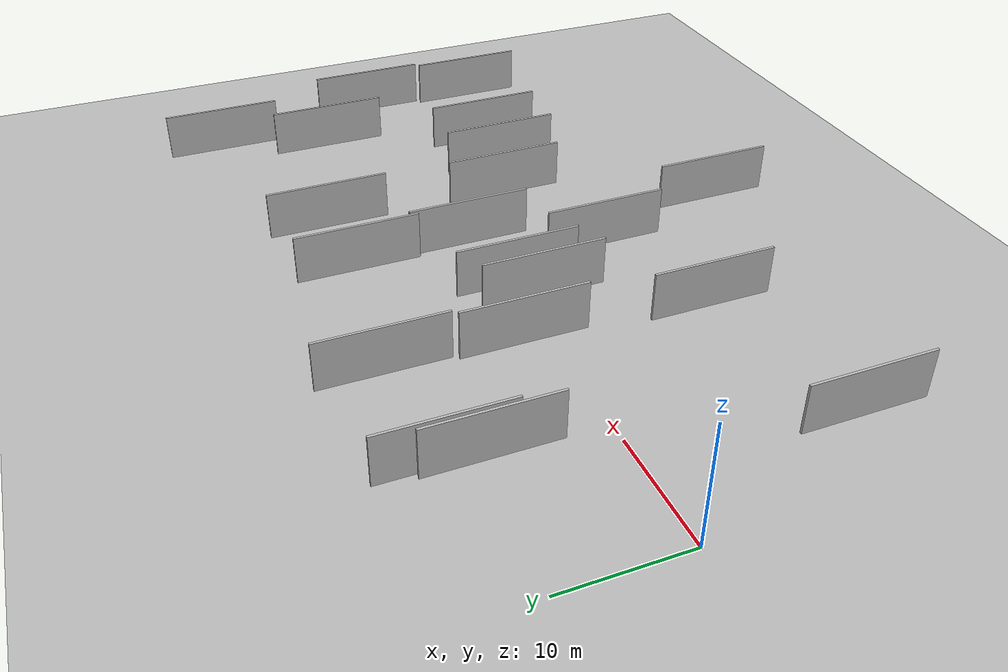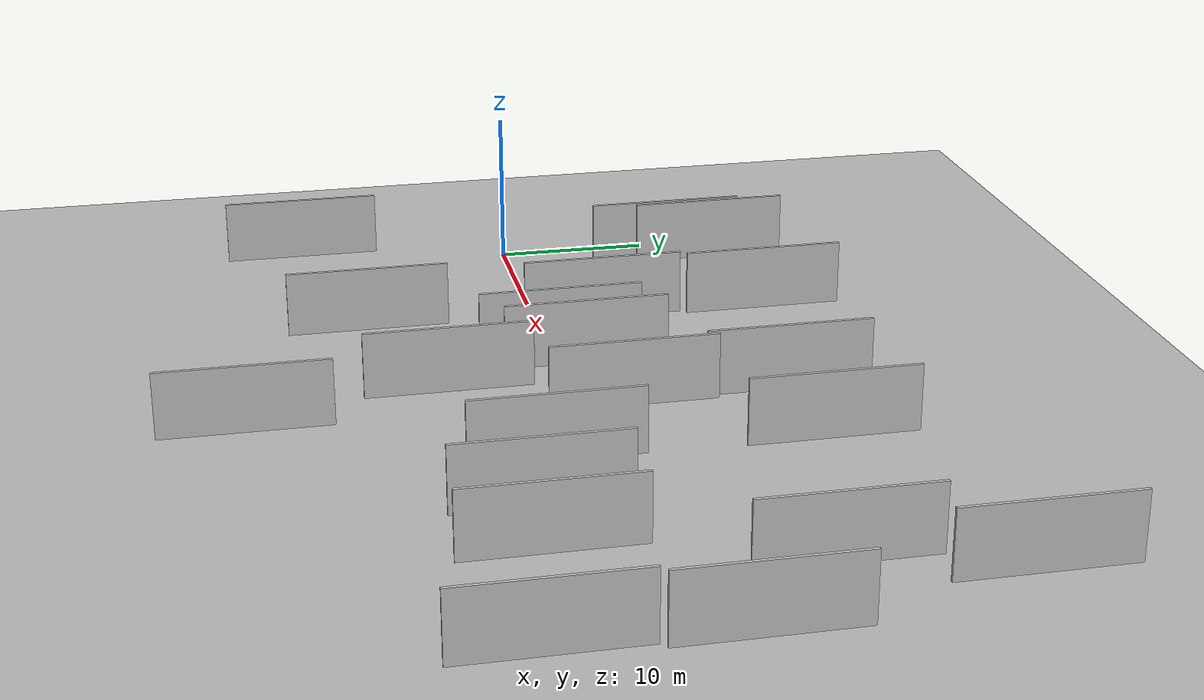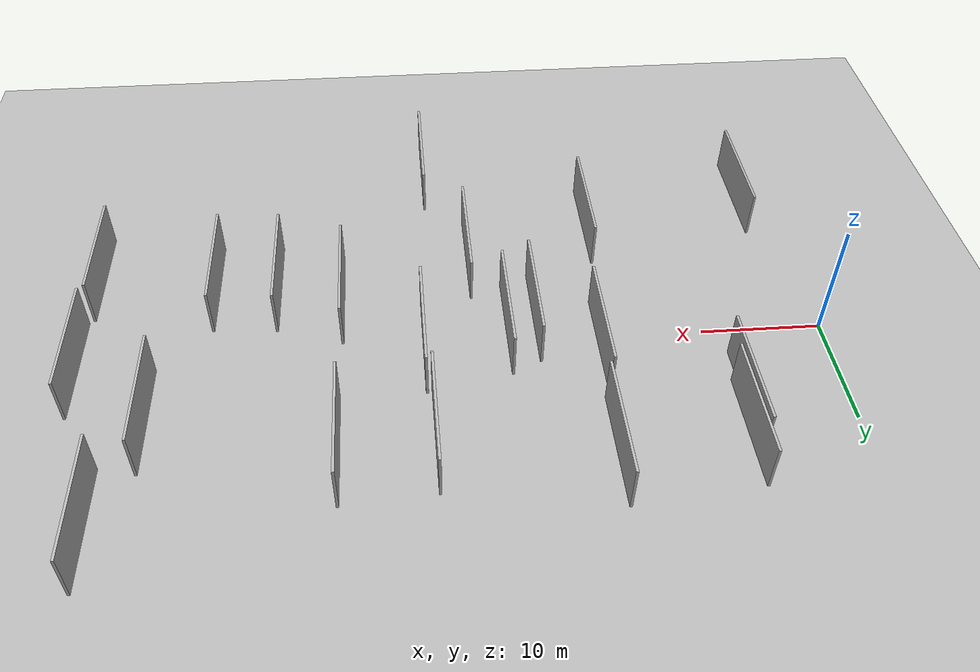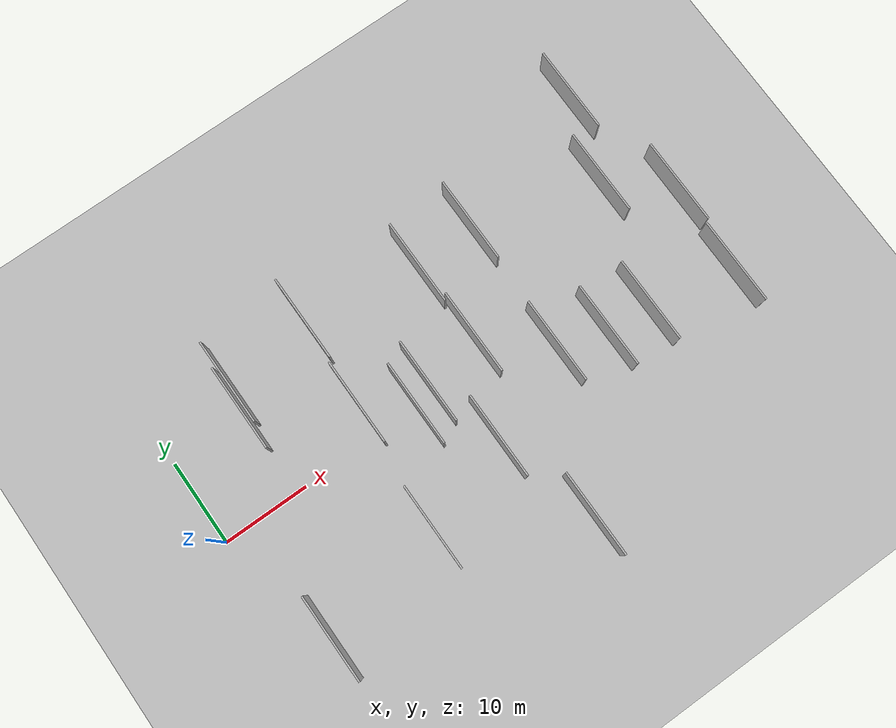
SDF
<?xml version="1.0" encoding="utf-8"?>

<sdf version="1.6">

   <world name="default">

      <gui fullscreen="0">

         <camera name="user_camera">

            <pose>-15 0 4.57585 0 0 0</pose>

            <view_controller>orbit</view_controller>

         </camera>

      </gui>

      <scene>

         <sky>

           <clouds>

             <speed>12</speed>

           </clouds>

         </sky>

         <ambient>0.4 0.4 0.4 1</ambient>

         <background>0.7 0.7 0.7 1</background>

         <shadows>1</shadows>

      </scene>

      <gravity>0 0 -9.8066</gravity>

      <magnetic_field>6e-06 2.3e-05 -4.2e-05</magnetic_field>

      <physics default="0" name="default_physics" type="ode">

         <ode>

            <solver>

               <type>quick</type>

               <iters>10</iters>

               <sor>1.0</sor>

               <use_dynamic_moi_rescaling>0</use_dynamic_moi_rescaling>

            </solver>

            <constraints>

               <cfm>0</cfm>

               <erp>0.2</erp>

               <contact_max_correcting_vel>100</contact_max_correcting_vel>

               <contact_surface_layer>0.001</contact_surface_layer>

            </constraints>

         </ode>

         <max_step_size>0.004</max_step_size>

         <real_time_factor>1</real_time_factor>

         <real_time_update_rate>250</real_time_update_rate>

      </physics>

      <light name="sun" type="directional">

         <cast_shadows>1</cast_shadows>

         <pose>0 0 10 0 0 0</pose>

         <diffuse>0.8 0.8 0.8 1</diffuse>

         <specular>0.2 0.2 0.2 1</specular>

         <attenuation>

            <range>1000</range>

            <constant>0.9</constant>

            <linear>0.01</linear>

            <quadratic>0.001</quadratic>

         </attenuation>

         <direction>-0.5 0.1 -0.9</direction>

      </light>

      <include>

         <name>ground_plane_1</name>

         <uri>model://HANNAS_ground_plane</uri>

         <pose>0 0 0  0 0 0</pose>

      </include>

      <include>

         <name>ground_plane_2</name>

         <uri>model://HANNAS_ground_plane</uri>

         <pose>100 0 0  0 0 0</pose>

      </include>

      <model name="HANNAS_wall_1">

         <static>1</static>

         <pose frame="">9.8182 12.6131 2.5 0.000000 0.000000 1.570796</pose>

         <link name="link">

            <pose frame="">0 0 2.00 0 0 0</pose>

            <collision name="collision">

               <geometry>

                  <box>

                     <size>10.00 0.2 4.00</size>

                  </box>

               </geometry>

               <max_contacts>10</max_contacts>

               <surface>

                  <contact>

                     <ode/>

                  </contact>

                  <bounce/>

                  <friction>

                     <torsional>

                        <ode/>

                     </torsional>

                     <ode/>

                  </friction>

               </surface>

            </collision>

            <visual name="visual">

               <cast_shadows>0</cast_shadows>

               <geometry>

                  <box>

                     <size>10.00 0.2 4.00</size>

                  </box>

               </geometry>

               <material>

                  <script>

                     <uri>model://HANNAS_wall/materials/scripts</uri>

                     <uri>model://HANNAS_wall/materials/textures</uri>

                     <name>vrc/HANNAS_wall</name>

                  </script>

               </material>

            </visual>

            <self_collide>0</self_collide>

            <enable_wind>0</enable_wind>

            <kinematic>0</kinematic>

         </link>

      </model>

      <model name="HANNAS_wall_2">

         <static>1</static>

         <pose frame="">29.0717 -7.8530 2.5 0.000000 0.000000 1.570796</pose>

         <link name="link">

            <pose frame="">0 0 2.00 0 0 0</pose>

            <collision name="collision">

               <geometry>

                  <box>

                     <size>10.00 0.2 4.00</size>

                  </box>

               </geometry>

               <max_contacts>10</max_contacts>

               <surface>

                  <contact>

                     <ode/>

                  </contact>

                  <bounce/>

                  <friction>

                     <torsional>

                        <ode/>

                     </torsional>

                     <ode/>

                  </friction>

               </surface>

            </collision>

            <visual name="visual">

               <cast_shadows>0</cast_shadows>

               <geometry>

                  <box>

                     <size>10.00 0.2 4.00</size>

                  </box>

               </geometry>

               <material>

                  <script>

                     <uri>model://HANNAS_wall/materials/scripts</uri>

                     <uri>model://HANNAS_wall/materials/textures</uri>

                     <name>vrc/HANNAS_wall</name>

                  </script>

               </material>

            </visual>

            <self_collide>0</self_collide>

            <enable_wind>0</enable_wind>

            <kinematic>0</kinematic>

         </link>

      </model>

      <model name="HANNAS_wall_3">

         <static>1</static>

         <pose frame="">60.1664 2.8333 2.5 0.000000 0.000000 1.570796</pose>

         <link name="link">

            <pose frame="">0 0 2.00 0 0 0</pose>

            <collision name="collision">

               <geometry>

                  <box>

                     <size>10.00 0.2 4.00</size>

                  </box>

               </geometry>

               <max_contacts>10</max_contacts>

               <surface>

                  <contact>

                     <ode/>

                  </contact>

                  <bounce/>

                  <friction>

                     <torsional>

                        <ode/>

                     </torsional>

                     <ode/>

                  </friction>

               </surface>

            </collision>

            <visual name="visual">

               <cast_shadows>0</cast_shadows>

               <geometry>

                  <box>

                     <size>10.00 0.2 4.00</size>

                  </box>

               </geometry>

               <material>

                  <script>

                     <uri>model://HANNAS_wall/materials/scripts</uri>

                     <uri>model://HANNAS_wall/materials/textures</uri>

                     <name>vrc/HANNAS_wall</name>

                  </script>

               </material>

            </visual>

            <self_collide>0</self_collide>

            <enable_wind>0</enable_wind>

            <kinematic>0</kinematic>

         </link>

      </model>

      <model name="HANNAS_wall_4">

         <static>1</static>

         <pose frame="">26.4874 0.8231 2.5 0.000000 0.000000 1.570796</pose>

         <link name="link">

            <pose frame="">0 0 2.00 0 0 0</pose>

            <collision name="collision">

               <geometry>

                  <box>

                     <size>10.00 0.2 4.00</size>

                  </box>

               </geometry>

               <max_contacts>10</max_contacts>

               <surface>

                  <contact>

                     <ode/>

                  </contact>

                  <bounce/>

                  <friction>

                     <torsional>

                        <ode/>

                     </torsional>

                     <ode/>

                  </friction>

               </surface>

            </collision>

            <visual name="visual">

               <cast_shadows>0</cast_shadows>

               <geometry>

                  <box>

                     <size>10.00 0.2 4.00</size>

                  </box>

               </geometry>

               <material>

                  <script>

                     <uri>model://HANNAS_wall/materials/scripts</uri>

                     <uri>model://HANNAS_wall/materials/textures</uri>

                     <name>vrc/HANNAS_wall</name>

                  </script>

               </material>

            </visual>

            <self_collide>0</self_collide>

            <enable_wind>0</enable_wind>

            <kinematic>0</kinematic>

         </link>

      </model>

      <model name="HANNAS_wall_5">

         <static>1</static>

         <pose frame="">24.1684 -0.3335 2.5 0.000000 0.000000 1.570796</pose>

         <link name="link">

            <pose frame="">0 0 2.00 0 0 0</pose>

            <collision name="collision">

               <geometry>

                  <box>

                     <size>10.00 0.2 4.00</size>

                  </box>

               </geometry>

               <max_contacts>10</max_contacts>

               <surface>

                  <contact>

                     <ode/>

                  </contact>

                  <bounce/>

                  <friction>

                     <torsional>

                        <ode/>

                     </torsional>

                     <ode/>

                  </friction>

               </surface>

            </collision>

            <visual name="visual">

               <cast_shadows>0</cast_shadows>

               <geometry>

                  <box>

                     <size>10.00 0.2 4.00</size>

                  </box>

               </geometry>

               <material>

                  <script>

                     <uri>model://HANNAS_wall/materials/scripts</uri>

                     <uri>model://HANNAS_wall/materials/textures</uri>

                     <name>vrc/HANNAS_wall</name>

                  </script>

               </material>

            </visual>

            <self_collide>0</self_collide>

            <enable_wind>0</enable_wind>

            <kinematic>0</kinematic>

         </link>

      </model>

      <model name="HANNAS_wall_6">

         <static>1</static>

         <pose frame="">32.7545 11.6563 2.5 0.000000 0.000000 1.570796</pose>

         <link name="link">

            <pose frame="">0 0 2.00 0 0 0</pose>

            <collision name="collision">

               <geometry>

                  <box>

                     <size>10.00 0.2 4.00</size>

                  </box>

               </geometry>

               <max_contacts>10</max_contacts>

               <surface>

                  <contact>

                     <ode/>

                  </contact>

                  <bounce/>

                  <friction>

                     <torsional>

                        <ode/>

                     </torsional>

                     <ode/>

                  </friction>

               </surface>

            </collision>

            <visual name="visual">

               <cast_shadows>0</cast_shadows>

               <geometry>

                  <box>

                     <size>10.00 0.2 4.00</size>

                  </box>

               </geometry>

               <material>

                  <script>

                     <uri>model://HANNAS_wall/materials/scripts</uri>

                     <uri>model://HANNAS_wall/materials/textures</uri>

                     <name>vrc/HANNAS_wall</name>

                  </script>

               </material>

            </visual>

            <self_collide>0</self_collide>

            <enable_wind>0</enable_wind>

            <kinematic>0</kinematic>

         </link>

      </model>

      <model name="HANNAS_wall_7">

         <static>1</static>

         <pose frame="">39.6389 -3.4174 2.5 0.000000 0.000000 1.570796</pose>

         <link name="link">

            <pose frame="">0 0 2.00 0 0 0</pose>

            <collision name="collision">

               <geometry>

                  <box>

                     <size>10.00 0.2 4.00</size>

                  </box>

               </geometry>

               <max_contacts>10</max_contacts>

               <surface>

                  <contact>

                     <ode/>

                  </contact>

                  <bounce/>

                  <friction>

                     <torsional>

                        <ode/>

                     </torsional>

                     <ode/>

                  </friction>

               </surface>

            </collision>

            <visual name="visual">

               <cast_shadows>0</cast_shadows>

               <geometry>

                  <box>

                     <size>10.00 0.2 4.00</size>

                  </box>

               </geometry>

               <material>

                  <script>

                     <uri>model://HANNAS_wall/materials/scripts</uri>

                     <uri>model://HANNAS_wall/materials/textures</uri>

                     <name>vrc/HANNAS_wall</name>

                  </script>

               </material>

            </visual>

            <self_collide>0</self_collide>

            <enable_wind>0</enable_wind>

            <kinematic>0</kinematic>

         </link>

      </model>

      <model name="HANNAS_wall_8">

         <static>1</static>

         <pose frame="">18.3992 -11.4477 2.5 0.000000 0.000000 1.570796</pose>

         <link name="link">

            <pose frame="">0 0 2.00 0 0 0</pose>

            <collision name="collision">

               <geometry>

                  <box>

                     <size>10.00 0.2 4.00</size>

                  </box>

               </geometry>

               <max_contacts>10</max_contacts>

               <surface>

                  <contact>

                     <ode/>

                  </contact>

                  <bounce/>

                  <friction>

                     <torsional>

                        <ode/>

                     </torsional>

                     <ode/>

                  </friction>

               </surface>

            </collision>

            <visual name="visual">

               <cast_shadows>0</cast_shadows>

               <geometry>

                  <box>

                     <size>10.00 0.2 4.00</size>

                  </box>

               </geometry>

               <material>

                  <script>

                     <uri>model://HANNAS_wall/materials/scripts</uri>

                     <uri>model://HANNAS_wall/materials/textures</uri>

                     <name>vrc/HANNAS_wall</name>

                  </script>

               </material>

            </visual>

            <self_collide>0</self_collide>

            <enable_wind>0</enable_wind>

            <kinematic>0</kinematic>

         </link>

      </model>

      <model name="HANNAS_wall_9">

         <static>1</static>

         <pose frame="">57.0047 17.6856 2.5 0.000000 0.000000 1.570796</pose>

         <link name="link">

            <pose frame="">0 0 2.00 0 0 0</pose>

            <collision name="collision">

               <geometry>

                  <box>

                     <size>10.00 0.2 4.00</size>

                  </box>

               </geometry>

               <max_contacts>10</max_contacts>

               <surface>

                  <contact>

                     <ode/>

                  </contact>

                  <bounce/>

                  <friction>

                     <torsional>

                        <ode/>

                     </torsional>

                     <ode/>

                  </friction>

               </surface>

            </collision>

            <visual name="visual">

               <cast_shadows>0</cast_shadows>

               <geometry>

                  <box>

                     <size>10.00 0.2 4.00</size>

                  </box>

               </geometry>

               <material>

                  <script>

                     <uri>model://HANNAS_wall/materials/scripts</uri>

                     <uri>model://HANNAS_wall/materials/textures</uri>

                     <name>vrc/HANNAS_wall</name>

                  </script>

               </material>

            </visual>

            <self_collide>0</self_collide>

            <enable_wind>0</enable_wind>

            <kinematic>0</kinematic>

         </link>

      </model>

      <model name="HANNAS_wall_10">

         <static>1</static>

         <pose frame="">19.7525 13.6398 2.5 0.000000 0.000000 1.570796</pose>

         <link name="link">

            <pose frame="">0 0 2.00 0 0 0</pose>

            <collision name="collision">

               <geometry>

                  <box>

                     <size>10.00 0.2 4.00</size>

                  </box>

               </geometry>

               <max_contacts>10</max_contacts>

               <surface>

                  <contact>

                     <ode/>

                  </contact>

                  <bounce/>

                  <friction>

                     <torsional>

                        <ode/>

                     </torsional>

                     <ode/>

                  </friction>

               </surface>

            </collision>

            <visual name="visual">

               <cast_shadows>0</cast_shadows>

               <geometry>

                  <box>

                     <size>10.00 0.2 4.00</size>

                  </box>

               </geometry>

               <material>

                  <script>

                     <uri>model://HANNAS_wall/materials/scripts</uri>

                     <uri>model://HANNAS_wall/materials/textures</uri>

                     <name>vrc/HANNAS_wall</name>

                  </script>

               </material>

            </visual>

            <self_collide>0</self_collide>

            <enable_wind>0</enable_wind>

            <kinematic>0</kinematic>

         </link>

      </model>

      <model name="HANNAS_wall_11">

         <static>1</static>

         <pose frame="">4.0565 -14.4821 2.5 0.000000 0.000000 1.570796</pose>

         <link name="link">

            <pose frame="">0 0 2.00 0 0 0</pose>

            <collision name="collision">

               <geometry>

                  <box>

                     <size>10.00 0.2 4.00</size>

                  </box>

               </geometry>

               <max_contacts>10</max_contacts>

               <surface>

                  <contact>

                     <ode/>

                  </contact>

                  <bounce/>

                  <friction>

                     <torsional>

                        <ode/>

                     </torsional>

                     <ode/>

                  </friction>

               </surface>

            </collision>

            <visual name="visual">

               <cast_shadows>0</cast_shadows>

               <geometry>

                  <box>

                     <size>10.00 0.2 4.00</size>

                  </box>

               </geometry>

               <material>

                  <script>

                     <uri>model://HANNAS_wall/materials/scripts</uri>

                     <uri>model://HANNAS_wall/materials/textures</uri>

                     <name>vrc/HANNAS_wall</name>

                  </script>

               </material>

            </visual>

            <self_collide>0</self_collide>

            <enable_wind>0</enable_wind>

            <kinematic>0</kinematic>

         </link>

      </model>

      <model name="HANNAS_wall_12">

         <static>1</static>

         <pose frame="">59.7131 -7.4524 2.5 0.000000 0.000000 1.570796</pose>

         <link name="link">

            <pose frame="">0 0 2.00 0 0 0</pose>

            <collision name="collision">

               <geometry>

                  <box>

                     <size>10.00 0.2 4.00</size>

                  </box>

               </geometry>

               <max_contacts>10</max_contacts>

               <surface>

                  <contact>

                     <ode/>

                  </contact>

                  <bounce/>

                  <friction>

                     <torsional>

                        <ode/>

                     </torsional>

                     <ode/>

                  </friction>

               </surface>

            </collision>

            <visual name="visual">

               <cast_shadows>0</cast_shadows>

               <geometry>

                  <box>

                     <size>10.00 0.2 4.00</size>

                  </box>

               </geometry>

               <material>

                  <script>

                     <uri>model://HANNAS_wall/materials/scripts</uri>

                     <uri>model://HANNAS_wall/materials/textures</uri>

                     <name>vrc/HANNAS_wall</name>

                  </script>

               </material>

            </visual>

            <self_collide>0</self_collide>

            <enable_wind>0</enable_wind>

            <kinematic>0</kinematic>

         </link>

      </model>

      <model name="HANNAS_wall_13">

         <static>1</static>

         <pose frame="">39.8935 12.1698 2.5 0.000000 0.000000 1.570796</pose>

         <link name="link">

            <pose frame="">0 0 2.00 0 0 0</pose>

            <collision name="collision">

               <geometry>

                  <box>

                     <size>10.00 0.2 4.00</size>

                  </box>

               </geometry>

               <max_contacts>10</max_contacts>

               <surface>

                  <contact>

                     <ode/>

                  </contact>

                  <bounce/>

                  <friction>

                     <torsional>

                        <ode/>

                     </torsional>

                     <ode/>

                  </friction>

               </surface>

            </collision>

            <visual name="visual">

               <cast_shadows>0</cast_shadows>

               <geometry>

                  <box>

                     <size>10.00 0.2 4.00</size>

                  </box>

               </geometry>

               <material>

                  <script>

                     <uri>model://HANNAS_wall/materials/scripts</uri>

                     <uri>model://HANNAS_wall/materials/textures</uri>

                     <name>vrc/HANNAS_wall</name>

                  </script>

               </material>

            </visual>

            <self_collide>0</self_collide>

            <enable_wind>0</enable_wind>

            <kinematic>0</kinematic>

         </link>

      </model>

      <model name="HANNAS_wall_14">

         <static>1</static>

         <pose frame="">32.3688 -19.7855 2.5 0.000000 0.000000 1.570796</pose>

         <link name="link">

            <pose frame="">0 0 2.00 0 0 0</pose>

            <collision name="collision">

               <geometry>

                  <box>

                     <size>10.00 0.2 4.00</size>

                  </box>

               </geometry>

               <max_contacts>10</max_contacts>

               <surface>

                  <contact>

                     <ode/>

                  </contact>

                  <bounce/>

                  <friction>

                     <torsional>

                        <ode/>

                     </torsional>

                     <ode/>

                  </friction>

               </surface>

            </collision>

            <visual name="visual">

               <cast_shadows>0</cast_shadows>

               <geometry>

                  <box>

                     <size>10.00 0.2 4.00</size>

                  </box>

               </geometry>

               <material>

                  <script>

                     <uri>model://HANNAS_wall/materials/scripts</uri>

                     <uri>model://HANNAS_wall/materials/textures</uri>

                     <name>vrc/HANNAS_wall</name>

                  </script>

               </material>

            </visual>

            <self_collide>0</self_collide>

            <enable_wind>0</enable_wind>

            <kinematic>0</kinematic>

         </link>

      </model>

      <model name="HANNAS_wall_15">

         <static>1</static>

         <pose frame="">33.2125 2.2762 2.5 0.000000 0.000000 1.570796</pose>

         <link name="link">

            <pose frame="">0 0 2.00 0 0 0</pose>

            <collision name="collision">

               <geometry>

                  <box>

                     <size>10.00 0.2 4.00</size>

                  </box>

               </geometry>

               <max_contacts>10</max_contacts>

               <surface>

                  <contact>

                     <ode/>

                  </contact>

                  <bounce/>

                  <friction>

                     <torsional>

                        <ode/>

                     </torsional>

                     <ode/>

                  </friction>

               </surface>

            </collision>

            <visual name="visual">

               <cast_shadows>0</cast_shadows>

               <geometry>

                  <box>

                     <size>10.00 0.2 4.00</size>

                  </box>

               </geometry>

               <material>

                  <script>

                     <uri>model://HANNAS_wall/materials/scripts</uri>

                     <uri>model://HANNAS_wall/materials/textures</uri>

                     <name>vrc/HANNAS_wall</name>

                  </script>

               </material>

            </visual>

            <self_collide>0</self_collide>

            <enable_wind>0</enable_wind>

            <kinematic>0</kinematic>

         </link>

      </model>

      <model name="HANNAS_wall_16">

         <static>1</static>

         <pose frame="">19.3636 3.2728 2.5 0.000000 0.000000 1.570796</pose>

         <link name="link">

            <pose frame="">0 0 2.00 0 0 0</pose>

            <collision name="collision">

               <geometry>

                  <box>

                     <size>10.00 0.2 4.00</size>

                  </box>

               </geometry>

               <max_contacts>10</max_contacts>

               <surface>

                  <contact>

                     <ode/>

                  </contact>

                  <bounce/>

                  <friction>

                     <torsional>

                        <ode/>

                     </torsional>

                     <ode/>

                  </friction>

               </surface>

            </collision>

            <visual name="visual">

               <cast_shadows>0</cast_shadows>

               <geometry>

                  <box>

                     <size>10.00 0.2 4.00</size>

                  </box>

               </geometry>

               <material>

                  <script>

                     <uri>model://HANNAS_wall/materials/scripts</uri>

                     <uri>model://HANNAS_wall/materials/textures</uri>

                     <name>vrc/HANNAS_wall</name>

                  </script>

               </material>

            </visual>

            <self_collide>0</self_collide>

            <enable_wind>0</enable_wind>

            <kinematic>0</kinematic>

         </link>

      </model>

      <model name="HANNAS_wall_17">

         <static>1</static>

         <pose frame="">44.9036 -5.1833 2.5 0.000000 0.000000 1.570796</pose>

         <link name="link">

            <pose frame="">0 0 2.00 0 0 0</pose>

            <collision name="collision">

               <geometry>

                  <box>

                     <size>10.00 0.2 4.00</size>

                  </box>

               </geometry>

               <max_contacts>10</max_contacts>

               <surface>

                  <contact>

                     <ode/>

                  </contact>

                  <bounce/>

                  <friction>

                     <torsional>

                        <ode/>

                     </torsional>

                     <ode/>

                  </friction>

               </surface>

            </collision>

            <visual name="visual">

               <cast_shadows>0</cast_shadows>

               <geometry>

                  <box>

                     <size>10.00 0.2 4.00</size>

                  </box>

               </geometry>

               <material>

                  <script>

                     <uri>model://HANNAS_wall/materials/scripts</uri>

                     <uri>model://HANNAS_wall/materials/textures</uri>

                     <name>vrc/HANNAS_wall</name>

                  </script>

               </material>

            </visual>

            <self_collide>0</self_collide>

            <enable_wind>0</enable_wind>

            <kinematic>0</kinematic>

         </link>

      </model>

      <model name="HANNAS_wall_18">

         <static>1</static>

         <pose frame="">9.3464 9.6897 2.5 0.000000 0.000000 1.570796</pose>

         <link name="link">

            <pose frame="">0 0 2.00 0 0 0</pose>

            <collision name="collision">

               <geometry>

                  <box>

                     <size>10.00 0.2 4.00</size>

                  </box>

               </geometry>

               <max_contacts>10</max_contacts>

               <surface>

                  <contact>

                     <ode/>

                  </contact>

                  <bounce/>

                  <friction>

                     <torsional>

                        <ode/>

                     </torsional>

                     <ode/>

                  </friction>

               </surface>

            </collision>

            <visual name="visual">

               <cast_shadows>0</cast_shadows>

               <geometry>

                  <box>

                     <size>10.00 0.2 4.00</size>

                  </box>

               </geometry>

               <material>

                  <script>

                     <uri>model://HANNAS_wall/materials/scripts</uri>

                     <uri>model://HANNAS_wall/materials/textures</uri>

                     <name>vrc/HANNAS_wall</name>

                  </script>

               </material>

            </visual>

            <self_collide>0</self_collide>

            <enable_wind>0</enable_wind>

            <kinematic>0</kinematic>

         </link>

      </model>

      <model name="HANNAS_wall_19">

         <static>1</static>

         <pose frame="">50.0149 -5.5641 2.5 0.000000 0.000000 1.570796</pose>

         <link name="link">

            <pose frame="">0 0 2.00 0 0 0</pose>

            <collision name="collision">

               <geometry>

                  <box>

                     <size>10.00 0.2 4.00</size>

                  </box>

               </geometry>

               <max_contacts>10</max_contacts>

               <surface>

                  <contact>

                     <ode/>

                  </contact>

                  <bounce/>

                  <friction>

                     <torsional>

                        <ode/>

                     </torsional>

                     <ode/>

                  </friction>

               </surface>

            </collision>

            <visual name="visual">

               <cast_shadows>0</cast_shadows>

               <geometry>

                  <box>

                     <size>10.00 0.2 4.00</size>

                  </box>

               </geometry>

               <material>

                  <script>

                     <uri>model://HANNAS_wall/materials/scripts</uri>

                     <uri>model://HANNAS_wall/materials/textures</uri>

                     <name>vrc/HANNAS_wall</name>

                  </script>

               </material>

            </visual>

            <self_collide>0</self_collide>

            <enable_wind>0</enable_wind>

            <kinematic>0</kinematic>

         </link>

      </model>

      <model name="HANNAS_wall_20">

         <static>1</static>

         <pose frame="">54.1189 8.4312 2.5 0.000000 0.000000 1.570796</pose>

         <link name="link">

            <pose frame="">0 0 2.00 0 0 0</pose>

            <collision name="collision">

               <geometry>

                  <box>

                     <size>10.00 0.2 4.00</size>

                  </box>

               </geometry>

               <max_contacts>10</max_contacts>

               <surface>

                  <contact>

                     <ode/>

                  </contact>

                  <bounce/>

                  <friction>

                     <torsional>

                        <ode/>

                     </torsional>

                     <ode/>

                  </friction>

               </surface>

            </collision>

            <visual name="visual">

               <cast_shadows>0</cast_shadows>

               <geometry>

                  <box>

                     <size>10.00 0.2 4.00</size>

                  </box>

               </geometry>

               <material>

                  <script>

                     <uri>model://HANNAS_wall/materials/scripts</uri>

                     <uri>model://HANNAS_wall/materials/textures</uri>

                     <name>vrc/HANNAS_wall</name>

                  </script>

               </material>

            </visual>

            <self_collide>0</self_collide>

            <enable_wind>0</enable_wind>

            <kinematic>0</kinematic>

         </link>

      </model>

   </world>

</sdf>

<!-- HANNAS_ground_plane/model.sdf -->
<sdf version="1.4">
<model name="HANNAS_ground_plane">
  <static>true</static>
    <link name="link">
      <collision name="collision">
        <geometry>
          <plane>
            <normal>0 0 1</normal>
            <size>1000 1000</size>
          </plane>
        </geometry>
        <surface>
          <friction>
            <ode>
              <mu>100</mu>
              <mu2>50</mu2>
            </ode>
          </friction>
        </surface>
      </collision>
      <visual name="visual">
        <cast_shadows>false</cast_shadows>
        <geometry>
          <plane>
            <normal>0 0 1</normal>
            <size>1000 1000</size>
          </plane>
        </geometry>
        <material>
          <script>
            <uri>model://HANNAS_ground_plane/materials/scripts/HANNAS_ground_plane.material</uri>
	    <uri>model://HANNAS_ground_plane/materials/textures</uri>
            <name>HANNASGroundPlane/Image</name>
          </script>
        </material>
      </visual>
    </link>
  </model>
</sdf>
